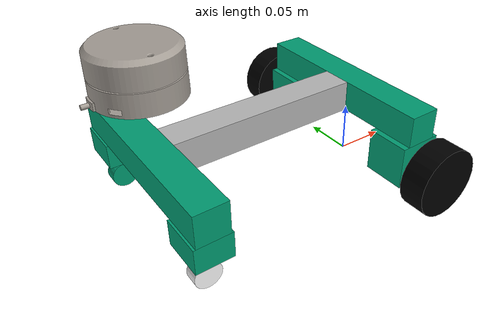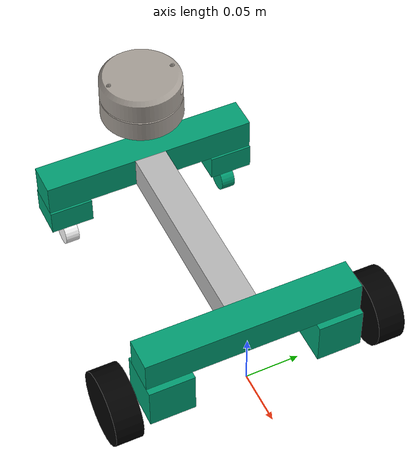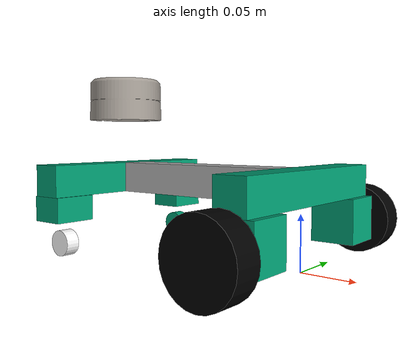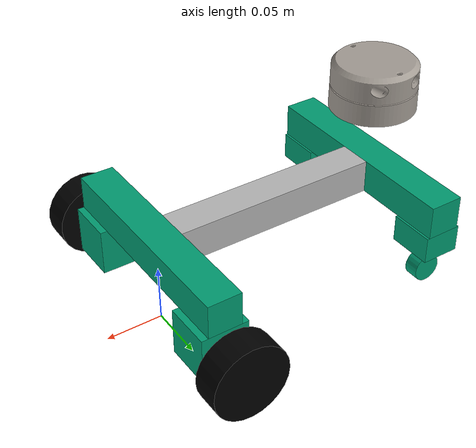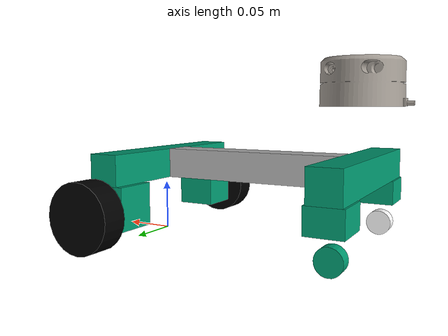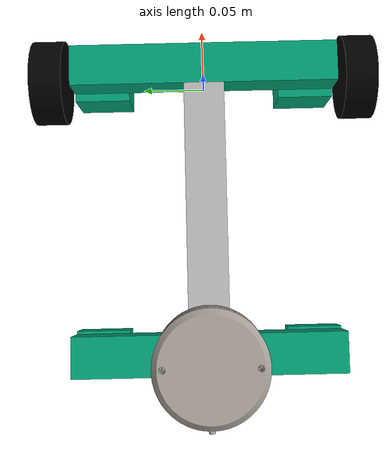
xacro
<?xml version="1.0"?>
<robot xmlns:xacro="http://www.ros.org/wiki/xacro" name="esdlbot_demo" >
  <joint name="laser_base_joint" type="fixed">
    <parent link="base_link" />
    <child link = "base_laser" />
    <origin xyz="-0.215 0.0 0.06" rpy="0.0 0.0 0.0" />
  </joint>
  <joint name="usb_cam_joint" type="fixed">
    <parent link="base_laser" />
    <child link = "usb_cam" />
    <origin xyz="0.0 0.0 0.06" rpy="-1.57 0.0 -1.57" />
  </joint>

  <link name="usb_cam" />

  <!-- robot -->
  <xacro:include filename="$(find my_car)/urdf/esdlbot_demo_base.urdf" />

  <!-- lidar -->
  <xacro:include filename="$(find ydlidar_ros)/urdf/ydlidar.urdf" />

</robot>

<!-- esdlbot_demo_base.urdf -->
<robot name="esdlbot_demo_base">

  <material name="black">
    <color rgba="0 0 0 1"/>
  </material>
  <material name="gray">
    <color rgba="0.72 0.72 0.72 1"/>
  </material>
  <material name="white">
    <color rgba="1 1 1 1"/>
  </material>

  <link name="base_footprint"/>

  <joint name="model_joint" type="fixed">
    <parent link="base_footprint" />
    <child link = "base_link" />
    <origin xyz="0.0 0.0 0.0735" rpy="0.0 0.0 0.0" />
  </joint>

  <link name="base_link">
    <!-- Main body -->
    <visual>
      <geometry>
        <box size="0.185 0.03 0.03"/>
      </geometry>
      <origin xyz="-0.1075 0.0 0.0" rpy="0.0 0.0 0.0"/>
      <material name="gray"/>
    </visual>

    <!-- Fore body -->
    <visual>
      <geometry>
        <box size="0.03 0.20 0.03"/>
      </geometry>
      <origin xyz="0.0 0.0 0.0" rpy="0.0 0.0 0.0"/>

    </visual>

    <!-- Rear body -->
    <visual>
      <geometry>
        <box size="0.03 0.20 0.03"/>
      </geometry>
      <origin xyz="-0.215 0.0 0.0" rpy="0.0 0.0 0.0"/>

    </visual>

    <!-- Left Motor -->
    <visual>
      <geometry>
        <box size="0.042 0.042 0.042"/>
      </geometry>
      <origin xyz="0.0 0.079 -0.036" rpy="0.0 0.0 0.0"/>
    </visual>

    <!-- Right Motor -->
    <visual>
      <geometry>
        <box size="0.042 0.042 0.042"/>
      </geometry>
      <origin xyz="0.0 -0.079 -0.036" rpy="0.0 0.0 0.0"/>
    </visual>

    <!-- Left back wheel base -->
    <visual>
      <geometry>
        <box size="0.034 0.040 0.024"/>
      </geometry>
      <origin xyz="-0.215 0.08 -0.027" rpy="0.0 0.0 0.0"/>
    </visual>

    <!-- Right back wheel base -->
    <visual>
      <geometry>
        <box size="0.034 0.040 0.024"/>
      </geometry>
      <origin xyz="-0.215 -0.08 -0.027" rpy="0.0 0.0 0.0"/>
    </visual>

    <!-- Left back wheel -->
    <visual>
      <geometry>
        <cylinder length="0.013" radius="0.0125"/>
      </geometry>
      <origin xyz="-0.215 -0.08 -0.061" rpy="1.5708 0.0 0.0"/>
      <material name="white"/>
    </visual>

    <!-- Right back wheel -->
    <visual>
      <geometry>
        <cylinder length="0.013" radius="0.0125"/>
      </geometry>
      <origin xyz="-0.215 0.08 -0.061" rpy="1.5708 0.0 0.0"/>
    </visual>

  </link>

  <joint name="Left_wheel_joint" type="continuous">
    <parent link="base_link" />
    <child link = "left_wheel" />
    <origin xyz="0.0 0.123 -0.04" rpy="0.0 0.0 0.0" />
    <axis xyz="0 1 0"/>
  </joint>

  <link name="left_wheel">
    <visual>
      <geometry>
        <cylinder length="0.025" radius="0.0335"/>
      </geometry>
      <origin xyz="0.0 0.0 0.0" rpy="1.5708 0.0 0.0"/>
      <material name="black"/>
    </visual>
  </link>

  <joint name="Right_wheel_joint" type="continuous">
    <parent link="base_link" />
    <child link = "Right_wheel" />
    <origin xyz="0.0 -0.123 -0.04" rpy="0.0 0.0 0.0" />
    <axis xyz="0 1 0"/>
  </joint>

  <link name="Right_wheel">
    <visual>
      <geometry>
        <cylinder length="0.025" radius="0.0335"/>
      </geometry>
      <origin xyz="0.0 0.0 0.0" rpy="1.5708 0.0 0.0"/>
      <material name="black"/>
    </visual>
  </link>

  <joint name="Imu_joint" type="fixed">
    <parent link="base_link" />
    <child link = "imu_frame" />
    <origin xyz="-0.075 0.0 0.03" rpy="0.0 0.0 0.0" />
  </joint>

  <link name="imu_frame" />

</robot>

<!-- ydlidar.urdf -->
<robot
  name="ydlidar_ros">
  <link
    name="base_laser">
    <inertial>
      <origin
        xyz="-0.00029774 0.0066667 0.00013047"
        rpy="0 0 0" />
      <mass
        value="0.15717" />
      <inertia
        ixx="6.7885E-05"
        ixy="-1.3987E-07"
        ixz="-8.1554E-07"
        iyy="0.00013173"
        iyz="-9.0932E-08"
        izz="7.1972E-05" />
    </inertial>
    <visual>
      <origin
        xyz="0 0 0"
        rpy="0 0 0" />
      <geometry>
        <mesh
          filename="package://ydlidar_ros/meshes/ydlidar.dae" />
      </geometry>
      <material
        name="">
        <color
          rgba="0.64706 0.61961 0.58824 1" />
      </material>
    </visual>
    <collision>
      <origin
        xyz="0 0 0"
        rpy="0 0 0" />
      <geometry>
        <mesh
          filename="package://ydlidar_ros/meshes/ydlidar.dae" />
      </geometry>
    </collision>
  </link>
  <link
    name="laser_frame">
    <inertial>
      <origin
        xyz="-0.00036659 0.00064155 -0.00027052"
        rpy="0 0 0" />
      <mass
        value="0.25482" />
      <inertia
        ixx="8.9194E-05"
        ixy="1.8116E-07"
        ixz="3.6435E-08"
        iyy="0.00018279"
        iyz="2.423E-07"
        izz="0.00011103" />
    </inertial>
  </link>
  <joint
    name="laser_joint"
    type="fixed">
    <origin
      xyz="0 0 0.03172"
      rpy="0 0 0" />
    <parent
      link="base_laser" />
    <child
      link="laser_frame" />
    <axis
      xyz="0 0 0" />
  </joint>
</robot>
